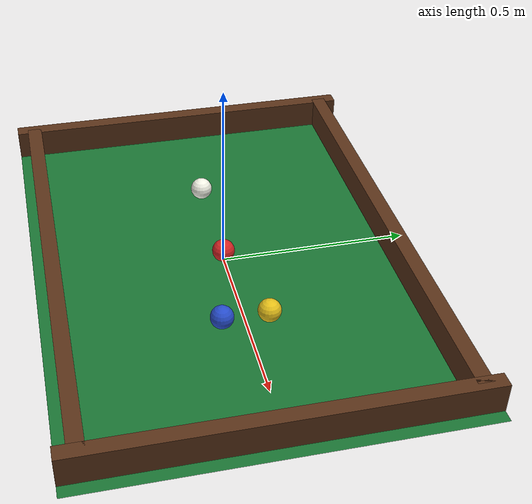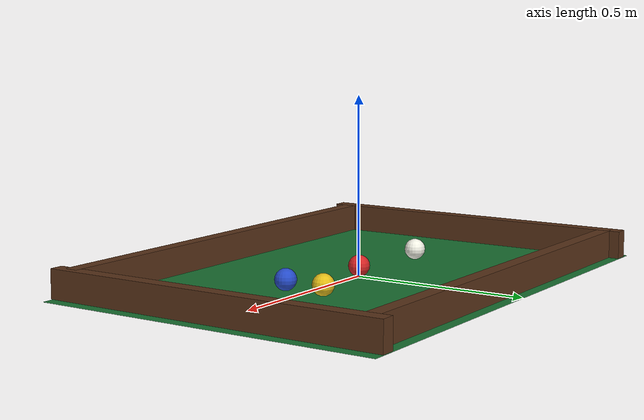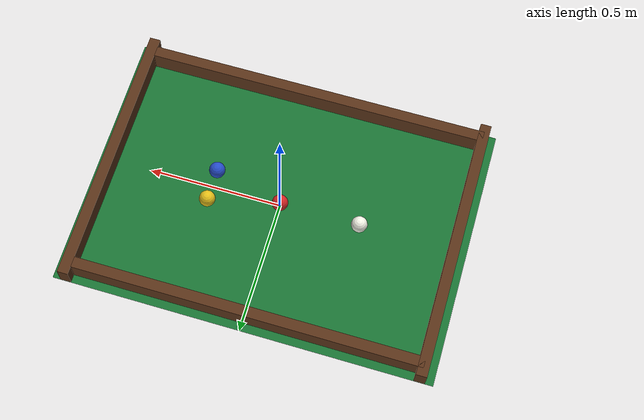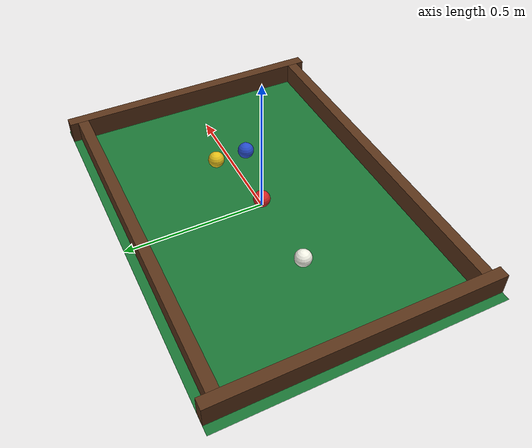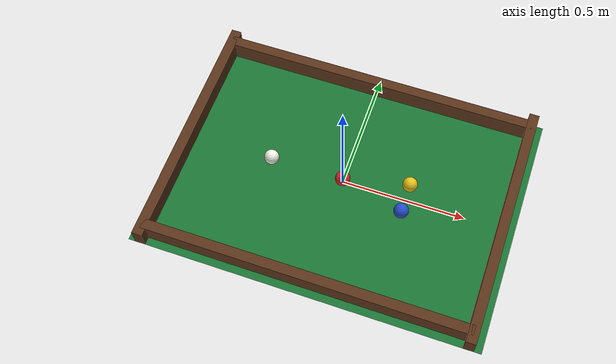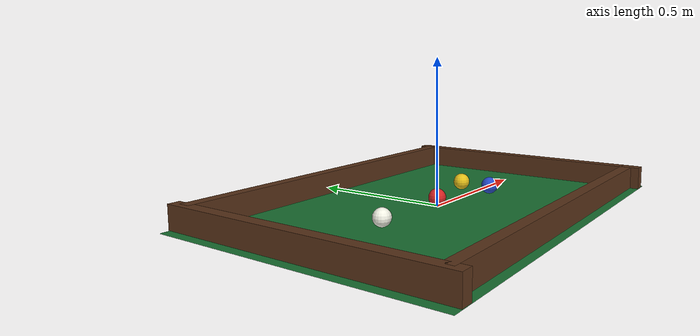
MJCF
<mujoco model="billiards">
  <option timestep="0.002" integrator="Euler" solver="Newton" tolerance="0" iterations="30"/>

  <default>
    <geom friction="0.4 0.005 0.0001" solref="0.004 1" solimp="0.95 0.99 0.001"/>
  </default>

  <worldbody>
    <light pos="0 0 2" dir="0 0 -1" diffuse="0.9 0.9 0.9"/>
    <geom name="table" type="plane" size="0.7 0.5 0.02" rgba="0.1 0.45 0.2 1"/>
    <geom name="wall_xp" type="box" pos="0.65 0 0.04" size="0.02 0.5 0.04" rgba="0.35 0.2 0.1 1"/>
    <geom name="wall_xn" type="box" pos="-0.65 0 0.04" size="0.02 0.5 0.04" rgba="0.35 0.2 0.1 1"/>
    <geom name="wall_yp" type="box" pos="0 0.45 0.04" size="0.65 0.02 0.04" rgba="0.35 0.2 0.1 1"/>
    <geom name="wall_yn" type="box" pos="0 -0.45 0.04" size="0.65 0.02 0.04" rgba="0.35 0.2 0.1 1"/>

    <body name="cue" pos="-0.3 0 0.03">
      <freejoint name="cue_free"/>
      <geom name="cue_geom" type="sphere" size="0.03" mass="0.17" rgba="0.95 0.95 0.9 1"/>
    </body>
    <body name="ball_1" pos="0 0 0.03">
      <freejoint name="ball_1_free"/>
      <geom name="ball_1_geom" type="sphere" size="0.03" mass="0.17" rgba="0.85 0.15 0.15 1"/>
    </body>
    <body name="ball_2" pos="0.26 0.06 0.03">
      <freejoint name="ball_2_free"/>
      <geom name="ball_2_geom" type="sphere" size="0.03" mass="0.17" rgba="0.9 0.75 0.1 1"/>
    </body>
    <body name="ball_3" pos="0.26 -0.06 0.03">
      <freejoint name="ball_3_free"/>
      <geom name="ball_3_geom" type="sphere" size="0.03" mass="0.17" rgba="0.15 0.3 0.8 1"/>
    </body>
  </worldbody>

  <sensor>
    <framepos name="cue.pos" objtype="body" objname="cue"/>
    <framelinvel name="cue.vel" objtype="body" objname="cue"/>
    <framepos name="ball_1.pos" objtype="body" objname="ball_1"/>
    <framelinvel name="ball_1.vel" objtype="body" objname="ball_1"/>
    <framepos name="ball_2.pos" objtype="body" objname="ball_2"/>
    <framelinvel name="ball_2.vel" objtype="body" objname="ball_2"/>
    <framepos name="ball_3.pos" objtype="body" objname="ball_3"/>
    <framelinvel name="ball_3.vel" objtype="body" objname="ball_3"/>
  </sensor>
</mujoco>
